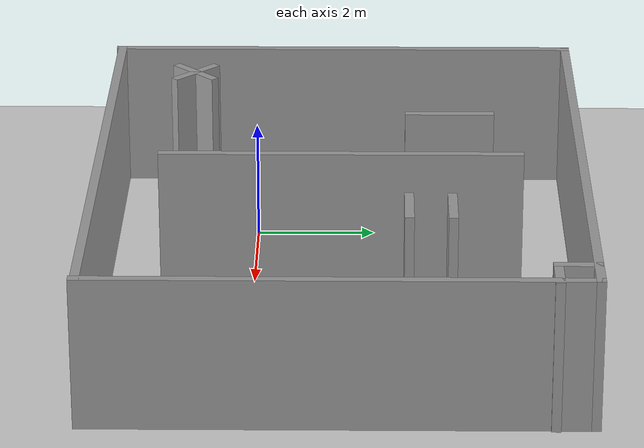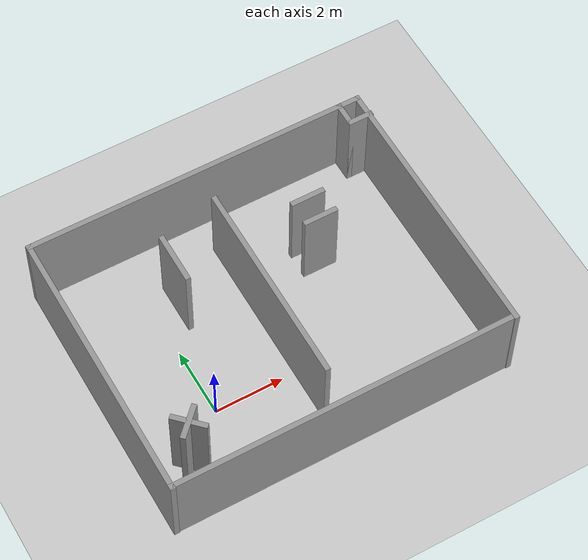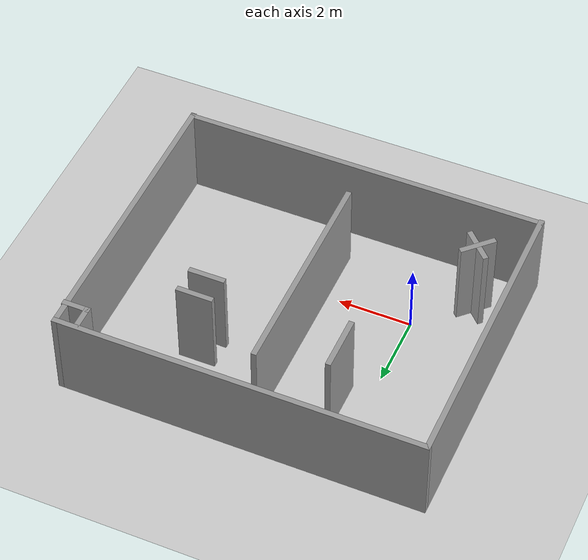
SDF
<sdf version='1.6'>
  <world name='default'>
    <!-- A global light source -->
    <include>
      <uri>model://sun</uri>
    </include>

    <!-- A ground plane -->
    <include>
      <uri>model://ground_plane</uri>
    </include>

    <physics type="ode">
      <real_time_update_rate>1000.0</real_time_update_rate>
      <max_step_size>0.001</max_step_size>
      <real_time_factor>1</real_time_factor>
      <ode>
        <solver>
          <type>quick</type>
          <iters>150</iters>
          <precon_iters>0</precon_iters>
          <sor>1.400000</sor>
          <use_dynamic_moi_rescaling>1</use_dynamic_moi_rescaling>
        </solver>
        <constraints>
          <cfm>0.00001</cfm>
          <erp>0.2</erp>
          <contact_max_correcting_vel>2000.000000</contact_max_correcting_vel>
          <contact_surface_layer>0.01000</contact_surface_layer>
        </constraints>
      </ode>
    </physics>

    <!-- Load world -->
    <include>
      <uri>model://sim_world_2</uri>
    </include>

    <scene>
      <ambient>0.4 0.4 0.4 1</ambient>
      <background>0.7 0.7 0.7 1</background>
      <shadows>true</shadows>
    </scene>

    <gui fullscreen='0'>
      <camera name='user_camera'>
        <pose>0.8 0.0 12.0 0 1.5708 0</pose>
        <view_controller>orbit</view_controller>
      </camera>
    </gui>
  </world>
</sdf>

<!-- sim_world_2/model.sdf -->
<sdf version='1.6'>
  <model name='sim_world_2'>
    <pose frame=''>2.44184 1.4384 0 0 -0 0</pose>
    <link name='Wall_0'>
      <collision name='Wall_0_Collision'>
        <geometry>
          <box>
            <size>10 0.15 2.5</size>
          </box>
        </geometry>
        <pose frame=''>0 0 1.25 0 -0 0</pose>
      </collision>
      <visual name='Wall_0_Visual'>
        <pose frame=''>0 0 1.25 0 -0 0</pose>
        <geometry>
          <box>
            <size>10 0.15 2.5</size>
          </box>
        </geometry>
        <material>
          <script>
            <uri>file://media/materials/scripts/gazebo.material</uri>
            <name>Gazebo/Grey</name>
          </script>
          <ambient>1 1 1 1</ambient>
        </material>
        <meta>
          <layer>0</layer>
        </meta>
      </visual>
      <pose frame=''>-0.016842 -3.925 0 0 -0 0</pose>
    </link>
    <link name='Wall_1'>
      <collision name='Wall_1_Collision'>
        <geometry>
          <box>
            <size>8.0532 0.15 2.5</size>
          </box>
        </geometry>
        <pose frame=''>0 0 1.25 0 -0 0</pose>
      </collision>
      <visual name='Wall_1_Visual'>
        <pose frame=''>0 0 1.25 0 -0 0</pose>
        <geometry>
          <box>
            <size>8.0532 0.15 2.5</size>
          </box>
        </geometry>
        <material>
          <script>
            <uri>file://media/materials/scripts/gazebo.material</uri>
            <name>Gazebo/Grey</name>
          </script>
          <ambient>1 1 1 1</ambient>
        </material>
        <meta>
          <layer>0</layer>
        </meta>
      </visual>
      <pose frame=''>4.90816 0 0 0 -0 1.5708</pose>
    </link>
    <link name='Wall_10'>
      <collision name='Wall_10_Collision'>
        <geometry>
          <box>
            <size>1 0.15 2.5</size>
          </box>
        </geometry>
        <pose frame=''>0 0 1.25 0 -0 0</pose>
      </collision>
      <visual name='Wall_10_Visual'>
        <pose frame=''>0 0 1.25 0 -0 0</pose>
        <geometry>
          <box>
            <size>1 0.15 2.5</size>
          </box>
        </geometry>
        <material>
          <script>
            <uri>file://media/materials/scripts/gazebo.material</uri>
            <name>Gazebo/Grey</name>
          </script>
          <ambient>1 1 1 1</ambient>
        </material>
        <meta>
          <layer>0</layer>
        </meta>
      </visual>
      <pose frame=''>-3.74439 -2.56035 0 0 -0 0.785398</pose>
    </link>
    <link name='Wall_12'>
      <collision name='Wall_12_Collision'>
        <geometry>
          <box>
            <size>1 0.15 2.5</size>
          </box>
        </geometry>
        <pose frame=''>0 0 1.25 0 -0 0</pose>
      </collision>
      <visual name='Wall_12_Visual'>
        <pose frame=''>0 0 1.25 0 -0 0</pose>
        <geometry>
          <box>
            <size>1 0.15 2.5</size>
          </box>
        </geometry>
        <material>
          <script>
            <uri>file://media/materials/scripts/gazebo.material</uri>
            <name>Gazebo/Grey</name>
          </script>
          <ambient>1 1 1 1</ambient>
        </material>
        <meta>
          <layer>0</layer>
        </meta>
      </visual>
      <pose frame=''>-3.73679 -2.56054 0 0 -0 -0.785398</pose>
    </link>
    <link name='Wall_14'>
      <collision name='Wall_14_Collision'>
        <geometry>
          <box>
            <size>0.75 0.15 2.5</size>
          </box>
        </geometry>
        <pose frame=''>0 0 1.25 0 -0 0</pose>
      </collision>
      <visual name='Wall_14_Visual'>
        <pose frame=''>0 0 1.25 0 -0 0</pose>
        <geometry>
          <box>
            <size>0.75 0.15 2.5</size>
          </box>
        </geometry>
        <material>
          <script>
            <uri>file://media/materials/scripts/gazebo.material</uri>
            <name>Gazebo/Grey</name>
          </script>
          <ambient>1 1 1 1</ambient>
        </material>
        <meta>
          <layer>0</layer>
        </meta>
      </visual>
      <pose frame=''>4.34184 3.63889 0 0 -0 -1.5708</pose>
    </link>
    <link name='Wall_15'>
      <collision name='Wall_15_Collision'>
        <geometry>
          <box>
            <size>0.75 0.15 2.5</size>
          </box>
        </geometry>
        <pose frame=''>0 0 1.25 0 -0 0</pose>
      </collision>
      <visual name='Wall_15_Visual'>
        <pose frame=''>0 0 1.25 0 -0 0</pose>
        <geometry>
          <box>
            <size>0.75 0.15 2.5</size>
          </box>
        </geometry>
        <material>
          <script>
            <uri>file://media/materials/scripts/gazebo.material</uri>
            <name>Gazebo/Grey</name>
          </script>
          <ambient>1 1 1 1</ambient>
        </material>
        <meta>
          <layer>0</layer>
        </meta>
      </visual>
      <pose frame=''>4.64184 3.33889 0 0 -0 0</pose>
    </link>
    <link name='Wall_17'>
      <collision name='Wall_17_Collision'>
        <geometry>
          <box>
            <size>1.5 0.15 2.5</size>
          </box>
        </geometry>
        <pose frame=''>0 0 1.25 0 -0 0</pose>
      </collision>
      <visual name='Wall_17_Visual'>
        <pose frame=''>0 0 1.25 0 -0 0</pose>
        <geometry>
          <box>
            <size>1.5 0.15 2.5</size>
          </box>
        </geometry>
        <material>
          <script>
            <uri>file://media/materials/scripts/gazebo.material</uri>
            <name>Gazebo/Grey</name>
          </script>
          <ambient>1 1 1 1</ambient>
        </material>
        <meta>
          <layer>0</layer>
        </meta>
      </visual>
      <pose frame=''>-1.80727 1.833 0 0 -0 -1.5708</pose>
    </link>
    <link name='Wall_2'>
      <collision name='Wall_2_Collision'>
        <geometry>
          <box>
            <size>10 0.15 2.5</size>
          </box>
        </geometry>
        <pose frame=''>0 0 1.25 0 -0 0</pose>
      </collision>
      <visual name='Wall_2_Visual'>
        <pose frame=''>0 0 1.25 0 -0 0</pose>
        <geometry>
          <box>
            <size>10 0.15 2.5</size>
          </box>
        </geometry>
        <material>
          <script>
            <uri>file://media/materials/scripts/gazebo.material</uri>
            <name>Gazebo/Grey</name>
          </script>
          <ambient>1 1 1 1</ambient>
        </material>
        <meta>
          <layer>0</layer>
        </meta>
      </visual>
      <pose frame=''>-0.016842 3.9516 0 0 -0 3.14159</pose>
    </link>
    <link name='Wall_22'>
      <collision name='Wall_22_Collision'>
        <geometry>
          <box>
            <size>1 0.15 2.5</size>
          </box>
        </geometry>
        <pose frame=''>0 0 1.25 0 -0 0</pose>
      </collision>
      <visual name='Wall_22_Visual'>
        <pose frame=''>0 0 1.25 0 -0 0</pose>
        <geometry>
          <box>
            <size>1 0.15 2.5</size>
          </box>
        </geometry>
        <material>
          <script>
            <uri>file://media/materials/scripts/gazebo.material</uri>
            <name>Gazebo/Grey</name>
          </script>
          <ambient>1 1 1 1</ambient>
        </material>
        <meta>
          <layer>0</layer>
        </meta>
      </visual>
      <pose frame=''>2.12453 1.80361 0 0 -0 0</pose>
    </link>
    <link name='Wall_24'>
      <collision name='Wall_24_Collision'>
        <geometry>
          <box>
            <size>1 0.15 2.5</size>
          </box>
        </geometry>
        <pose frame=''>0 0 1.25 0 -0 0</pose>
      </collision>
      <visual name='Wall_24_Visual'>
        <pose frame=''>0 0 1.25 0 -0 0</pose>
        <geometry>
          <box>
            <size>1 0.15 2.5</size>
          </box>
        </geometry>
        <material>
          <script>
            <uri>file://media/materials/scripts/gazebo.material</uri>
            <name>Gazebo/Grey</name>
          </script>
          <ambient>1 1 1 1</ambient>
        </material>
        <meta>
          <layer>0</layer>
        </meta>
      </visual>
      <pose frame=''>2.11637 1.11451 0 0 -0 0</pose>
    </link>
    <link name='Wall_3'>
      <collision name='Wall_3_Collision'>
        <geometry>
          <box>
            <size>8.0532 0.15 2.5</size>
          </box>
        </geometry>
        <pose frame=''>0 0 1.25 0 -0 0</pose>
      </collision>
      <visual name='Wall_3_Visual'>
        <pose frame=''>0 0 1.25 0 -0 0</pose>
        <geometry>
          <box>
            <size>8.0532 0.15 2.5</size>
          </box>
        </geometry>
        <material>
          <script>
            <uri>file://media/materials/scripts/gazebo.material</uri>
            <name>Gazebo/Grey</name>
          </script>
          <ambient>1 1 1 1</ambient>
        </material>
        <meta>
          <layer>0</layer>
        </meta>
      </visual>
      <pose frame=''>-4.94184 0 0 0 -0 -1.5708</pose>
    </link>
    <link name='Wall_5'>
      <collision name='Wall_5_Collision'>
        <geometry>
          <box>
            <size>6 0.15 2.5</size>
          </box>
        </geometry>
        <pose frame=''>0 0 1.25 0 -0 0</pose>
      </collision>
      <visual name='Wall_5_Visual'>
        <pose frame=''>0 0 1.25 0 -0 0</pose>
        <geometry>
          <box>
            <size>6 0.15 2.5</size>
          </box>
        </geometry>
        <material>
          <script>
            <uri>file://media/materials/scripts/gazebo.material</uri>
            <name>Gazebo/Grey</name>
          </script>
          <ambient>1 1 1 1</ambient>
        </material>
        <meta>
          <layer>0</layer>
        </meta>
      </visual>
      <pose frame=''>-0.024447 0.014305 0 0 -0 -1.5708</pose>
    </link>
    <static>1</static>
  </model>
</sdf>
